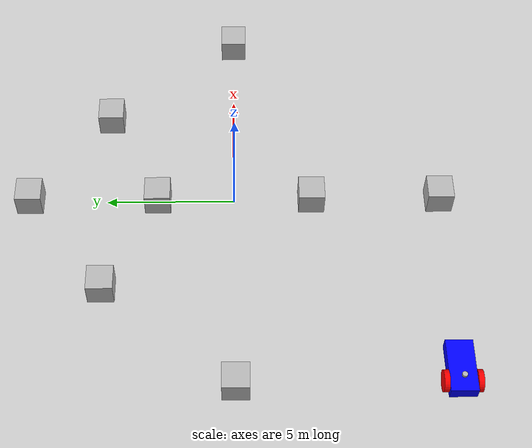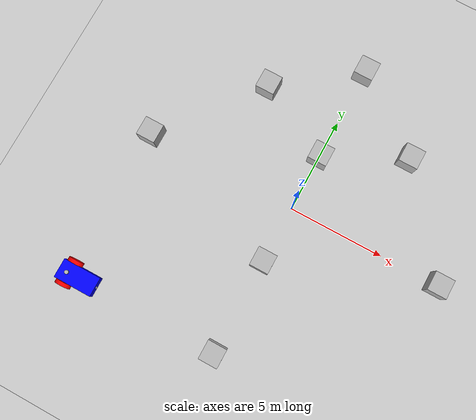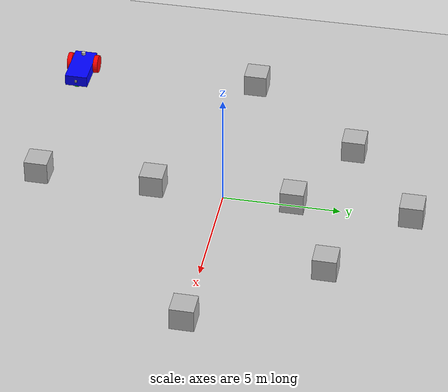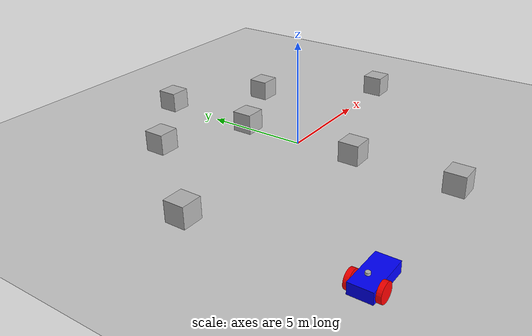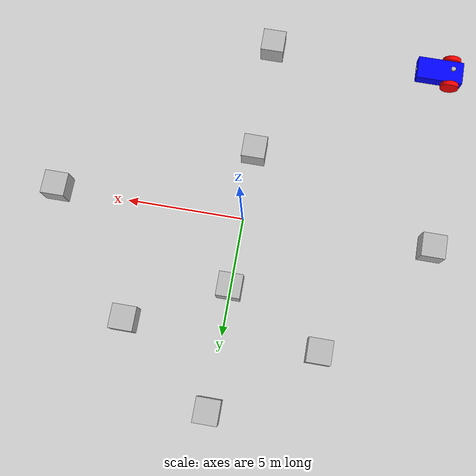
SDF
<sdf version="1.8">
 <world name="aruco_world">
  <physics name="1ms" type="ignored">
   <max_step_size>0.001</max_step_size>
   <real_time_factor>1.0</real_time_factor>
  </physics>
  <plugin filename="gz-sim-physics-system" name="gz::sim::systems::Physics"/>
  <plugin filename="gz-sim-user-commands-system" name="gz::sim::systems::UserCommands"/>
  <plugin filename="gz-sim-scene-broadcaster-system" name="gz::sim::systems::SceneBroadcaster"/>
  <plugin filename="gz-sim-sensors-system" name="gz::sim::systems::Sensors">
   <render_engine>ogre2</render_engine>
  </plugin>
  <plugin filename="gz-sim-imu-system" name="gz::sim::systems::Imu"/>
  <light type="directional" name="sun">
   <cast_shadows>false</cast_shadows>
   <pose>-10 0 10 0 0 0</pose>
   <diffuse>0.8 0.8 0.8 1</diffuse>
   <specular>0.2 0.2 0.2 1</specular>
   <attenuation>
    <range>1000</range>
    <constant>0.9</constant>
    <linear>0.01</linear>
    <quadratic>0.001</quadratic>
   </attenuation>
   <direction>-0.5 0.1 -0.9</direction>
  </light>
  <model name="ground_plane">
   <static>true</static>
   <link name="link">
    <collision name="collision"><geometry><plane><normal>0 0 1</normal></plane></geometry></collision>
    <visual name="visual">
     <geometry><plane><normal>0 0 1</normal><size>100 100</size></plane></geometry>
     <material>
      <ambient>0.8 0.8 0.8 1</ambient>
      <diffuse>0.8 0.8 0.8 1</diffuse>
      <specular>0.8 0.8 0.8 1</specular>
     </material>
    </visual>
   </link>
  </model>
  <include><uri>model://aruco_box_0</uri><pose>0 3 0.5 0 0 0</pose></include>
  <include><uri>model://aruco_box_1</uri><pose>0 -3 0.5 0 0 0</pose></include>
  <include><uri>model://aruco_box_2</uri><pose>0 -8 0.5 0 0 0</pose></include>
  <include><uri>model://aruco_box_3</uri><pose>0 8 0.5 0 0 0</pose></include>
  <include><uri>model://aruco_box_4</uri><pose>-8 0 0.5 0 0 0</pose></include>
  <include><uri>model://aruco_box_5</uri><pose>-4 5 0.5 0 0 0</pose></include>
  <include><uri>model://aruco_box_6</uri><pose>4 5 0.5 0 0 0</pose></include>
  <include><uri>model://aruco_box_7</uri><pose>8 0 0.5 0 0 0</pose></include>
  <include><uri>model://robot</uri><pose>-8 -8 0 0 0 0</pose></include>
 </world>
</sdf>

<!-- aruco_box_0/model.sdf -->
<sdf version="1.5">

 <model name="aruco_box_0">
      <pose>0 0 0 0 -0 0</pose>
      <link name="link">
        <inertial>
          <mass>1</mass>
          <inertia>
            <ixx>0.166667</ixx>
            <ixy>0</ixy>
            <ixz>0</ixz>
            <iyy>0.166667</iyy>
            <iyz>0</iyz>
            <izz>0.166667</izz>
          </inertia>
          <pose>0 0 0 0 -0 0</pose>
        </inertial>
        <collision name="collision">
          <geometry>
            <box>
              <size>1.0 1.0 1.0</size>
            </box>
          </geometry>
          <surface>
            <contact>
              <ode />
            </contact>
            <bounce />
            <friction>
              <torsional>
                <ode />
              </torsional>
              <ode />
            </friction>
          </surface>
          <max_contacts>10</max_contacts>
        </collision>
        <visual name="aruco_box_0_mesh">
          <geometry>
            <mesh>
                <uri>model://aruco_box_0/model.dae</uri>
                <scale>0.5 0.5 0.5</scale>
            </mesh>
          </geometry>
        </visual>
        <self_collide>0</self_collide>
        <enable_wind>0</enable_wind>
        <kinematic>0</kinematic>
      </link>
    </model>
    </sdf>

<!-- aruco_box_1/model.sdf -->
<sdf version="1.5">

 <model name="aruco_box_1">
      <pose>0 0 0 0 -0 0</pose>
      <link name="link">
        <inertial>
          <mass>1</mass>
          <inertia>
            <ixx>0.166667</ixx>
            <ixy>0</ixy>
            <ixz>0</ixz>
            <iyy>0.166667</iyy>
            <iyz>0</iyz>
            <izz>0.166667</izz>
          </inertia>
          <pose>0 0 0 0 -0 0</pose>
        </inertial>
        <collision name="collision">
          <geometry>
            <box>
              <size>1 1 1</size>
            </box>
          </geometry>
          <surface>
            <contact>
              <ode />
            </contact>
            <bounce />
            <friction>
              <torsional>
                <ode />
              </torsional>
              <ode />
            </friction>
          </surface>
          <max_contacts>10</max_contacts>
        </collision>
        <visual name="aruco_box_1_mesh">
          <geometry>
            <mesh>
                <uri>model://aruco_box_1/model.dae</uri>
                <scale>0.5 0.5 0.5</scale>
            </mesh>
          </geometry>
        </visual>
        <self_collide>0</self_collide>
        <enable_wind>0</enable_wind>
        <kinematic>0</kinematic>
      </link>
    </model>
    </sdf>

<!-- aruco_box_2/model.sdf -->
<sdf version="1.5">

 <model name="aruco_box_2">
      <pose>0 0 0 0 -0 0</pose>
      <link name="link">
        <inertial>
          <mass>1</mass>
          <inertia>
            <ixx>0.166667</ixx>
            <ixy>0</ixy>
            <ixz>0</ixz>
            <iyy>0.166667</iyy>
            <iyz>0</iyz>
            <izz>0.166667</izz>
          </inertia>
          <pose>0 0 0 0 -0 0</pose>
        </inertial>
        <collision name="collision">
          <geometry>
            <box>
              <size>1 1 1</size>
            </box>
          </geometry>
          <surface>
            <contact>
              <ode />
            </contact>
            <bounce />
            <friction>
              <torsional>
                <ode />
              </torsional>
              <ode />
            </friction>
          </surface>
          <max_contacts>10</max_contacts>
        </collision>
        <visual name="aruco_box_2_mesh">
          <geometry>
            <mesh>
                <uri>model://aruco_box_2/model.dae</uri>
                <scale>0.5 0.5 0.5</scale>
            </mesh>
          </geometry>
        </visual>
        <self_collide>0</self_collide>
        <enable_wind>0</enable_wind>
        <kinematic>0</kinematic>
      </link>
    </model>
    </sdf>

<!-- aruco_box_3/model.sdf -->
<sdf version="1.5">

 <model name="aruco_box_3">
      <pose>0 0 0 0 -0 0</pose>
      <link name="link">
        <inertial>
          <mass>1</mass>
          <inertia>
            <ixx>0.166667</ixx>
            <ixy>0</ixy>
            <ixz>0</ixz>
            <iyy>0.166667</iyy>
            <iyz>0</iyz>
            <izz>0.166667</izz>
          </inertia>
          <pose>0 0 0 0 -0 0</pose>
        </inertial>
        <collision name="collision">
          <geometry>
            <box>
              <size>1 1 1</size>
            </box>
          </geometry>
          <surface>
            <contact>
              <ode />
            </contact>
            <bounce />
            <friction>
              <torsional>
                <ode />
              </torsional>
              <ode />
            </friction>
          </surface>
          <max_contacts>10</max_contacts>
        </collision>
        <visual name="aruco_box_3_mesh">
          <geometry>
            <mesh>
                <uri>model://aruco_box_3/model.dae</uri>
                <scale>0.5 0.5 0.5</scale>
            </mesh>
          </geometry>
        </visual>
        <self_collide>0</self_collide>
        <enable_wind>0</enable_wind>
        <kinematic>0</kinematic>
      </link>
    </model>
    </sdf>

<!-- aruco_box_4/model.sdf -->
<sdf version="1.5">

 <model name="aruco_box_4">
      <pose>0 0 0 0 -0 0</pose>
      <link name="link">
        <inertial>
          <mass>1</mass>
          <inertia>
            <ixx>0.166667</ixx>
            <ixy>0</ixy>
            <ixz>0</ixz>
            <iyy>0.166667</iyy>
            <iyz>0</iyz>
            <izz>0.166667</izz>
          </inertia>
          <pose>0 0 0 0 -0 0</pose>
        </inertial>
        <collision name="collision">
          <geometry>
            <box>
              <size>1 1 1</size>
            </box>
          </geometry>
          <surface>
            <contact>
              <ode />
            </contact>
            <bounce />
            <friction>
              <torsional>
                <ode />
              </torsional>
              <ode />
            </friction>
          </surface>
          <max_contacts>10</max_contacts>
        </collision>
        <visual name="aruco_box_4_mesh">
          <geometry>
            <mesh>
                <uri>model://aruco_box_4/model.dae</uri>
                <scale>0.5 0.5 0.5</scale>
            </mesh>
          </geometry>
        </visual>
        <self_collide>0</self_collide>
        <enable_wind>0</enable_wind>
        <kinematic>0</kinematic>
      </link>
    </model>
    </sdf>

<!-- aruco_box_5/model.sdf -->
<sdf version="1.5">

 <model name="aruco_box_5">
      <pose>0 0 0 0 -0 0</pose>
      <link name="link">
        <inertial>
          <mass>1</mass>
          <inertia>
            <ixx>0.166667</ixx>
            <ixy>0</ixy>
            <ixz>0</ixz>
            <iyy>0.166667</iyy>
            <iyz>0</iyz>
            <izz>0.166667</izz>
          </inertia>
          <pose>0 0 0 0 -0 0</pose>
        </inertial>
        <collision name="collision">
          <geometry>
            <box>
              <size>1 1 1</size>
            </box>
          </geometry>
          <surface>
            <contact>
              <ode />
            </contact>
            <bounce />
            <friction>
              <torsional>
                <ode />
              </torsional>
              <ode />
            </friction>
          </surface>
          <max_contacts>10</max_contacts>
        </collision>
        <visual name="aruco_box_5_mesh">
          <geometry>
            <mesh>
                <uri>model://aruco_box_5/model.dae</uri>
                <scale>0.5 0.5 0.5</scale>
            </mesh>
          </geometry>
        </visual>
        <self_collide>0</self_collide>
        <enable_wind>0</enable_wind>
        <kinematic>0</kinematic>
      </link>
    </model>
    </sdf>

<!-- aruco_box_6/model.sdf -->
<sdf version="1.5">

 <model name="aruco_box_6">
      <pose>0 0 0 0 -0 0</pose>
      <link name="link">
        <inertial>
          <mass>1</mass>
          <inertia>
            <ixx>0.166667</ixx>
            <ixy>0</ixy>
            <ixz>0</ixz>
            <iyy>0.166667</iyy>
            <iyz>0</iyz>
            <izz>0.166667</izz>
          </inertia>
          <pose>0 0 0 0 -0 0</pose>
        </inertial>
        <collision name="collision">
          <geometry>
            <box>
              <size>1 1 1</size>
            </box>
          </geometry>
          <surface>
            <contact>
              <ode />
            </contact>
            <bounce />
            <friction>
              <torsional>
                <ode />
              </torsional>
              <ode />
            </friction>
          </surface>
          <max_contacts>10</max_contacts>
        </collision>
        <visual name="aruco_box_6_mesh">
          <geometry>
            <mesh>
                <uri>model://aruco_box_6/model.dae</uri>
                <scale>0.5 0.5 0.5</scale>
            </mesh>
          </geometry>
        </visual>
        <self_collide>0</self_collide>
        <enable_wind>0</enable_wind>
        <kinematic>0</kinematic>
      </link>
    </model>
    </sdf>

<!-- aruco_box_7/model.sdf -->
<sdf version="1.5">

 <model name="aruco_box_7">
      <pose>0 0 0 0 -0 0</pose>
      <link name="link">
        <inertial>
          <mass>1</mass>
          <inertia>
            <ixx>0.166667</ixx>
            <ixy>0</ixy>
            <ixz>0</ixz>
            <iyy>0.166667</iyy>
            <iyz>0</iyz>
            <izz>0.166667</izz>
          </inertia>
          <pose>0 0 0 0 -0 0</pose>
        </inertial>
        <collision name="collision">
          <geometry>
            <box>
              <size>1 1 1</size>
            </box>
          </geometry>
          <surface>
            <contact>
              <ode />
            </contact>
            <bounce />
            <friction>
              <torsional>
                <ode />
              </torsional>
              <ode />
            </friction>
          </surface>
          <max_contacts>10</max_contacts>
        </collision>
        <visual name="aruco_box_7_mesh">
          <geometry>
            <mesh>
                <uri>model://aruco_box_7/model.dae</uri>
                <scale>0.5 0.5 0.5</scale>
            </mesh>
          </geometry>
        </visual>
        <self_collide>0</self_collide>
        <enable_wind>0</enable_wind>
        <kinematic>0</kinematic>
      </link>
    </model>
    </sdf>

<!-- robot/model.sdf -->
<sdf version="1.8">
    <model name='vehicle_blue'>
        <canonical_link>chassis</canonical_link>
        <plugin
            filename="gz-sim-pose-publisher-system"
            name="gz::sim::systems::PosePublisher">
            <use_pose_vector_msg>true</use_pose_vector_msg>
            <publish_nested_model_pose>true</publish_nested_model_pose>
        </plugin>

        <link name='chassis'>
            <pose relative_to='__model__'>0.5 0 0.4 0 0 0</pose>
            <inertial> <!--inertial properties of the link mass, inertia matix-->
                <mass>10.14395</mass>
                <inertia>
                    <ixx>0.126164</ixx>
                    <ixy>0</ixy>
                    <ixz>0</ixz>
                    <iyy>0.416519</iyy>
                    <iyz>0</iyz>
                    <izz>0.481014</izz>
                </inertia>
            </inertial>
            <visual name='visual'>
                <geometry>
                    <box>
                        <size>2.0 1.0 0.5</size> <!--question: this size is in meter-->
                    </box>
                </geometry>
                <!--let's add color to our link-->
                <material>
                    <ambient>0.0 0.0 1.0 1</ambient>
                    <diffuse>0.0 0.0 1.0 1</diffuse>
                    <specular>0.0 0.0 1.0 1</specular>
                </material>
            </visual>
            <collision name='collision'> <!--todo: describe why we need the collision-->
                <geometry>
                    <box>
                        <size>2.0 1.0 0.5</size>
                    </box>
                </geometry>
            </collision>
        </link>

        <!-- Attach a camera to the nose of the bot -->
        <link name="camera">
            <pose relative_to="chassis">1.0 0 0 0 0 0</pose>
            <inertial>
              <mass>0.1</mass>
              <inertia>
                <ixx>0.000166667</ixx>
                <iyy>0.000166667</iyy>
                <izz>0.000166667</izz>
              </inertia>
            </inertial>
            <collision name="collision">
              <geometry>
                <box>
                  <size>0.1 0.1 0.1</size>
                </box>
              </geometry>
            </collision>
            <visual name="visual">
              <geometry>
                <box>
                  <size>0.1 0.1 0.1</size>
                </box>
              </geometry>
            </visual>
            <sensor name="camera" type="camera">
              <camera>
                <horizontal_fov>1.047</horizontal_fov>
                <image>
                  <width>1280</width>
                  <height>720</height>
                </image>
                <clip>
                  <near>0.1</near>
                  <far>100</far>
                </clip>
              </camera>
              <always_on>1</always_on>
              <update_rate>30</update_rate>
              <visualize>true</visualize>
              <topic>camera</topic>
              <cameraInfoTopicName>camera_info</cameraInfoTopicName>
            </sensor>
          </link>

        <joint name="camera_joint" type="fixed">
            <parent>chassis</parent>
            <child>camera</child>
        </joint>

        <!-- Lidar Sensor -->
        <link name="lidar">
            <pose relative_to="chassis">-0.5 0 0.5 0 0 0</pose>
            <collision name="collision">
                <geometry>
                    <cylinder>
                        <radius>0.1</radius>
                        <length>0.1</length>
                    </cylinder>
                </geometry>
            </collision>
            <visual name="visual">
                <geometry>
                    <cylinder>
                        <radius>0.1</radius>
                        <length>0.1</length>
                    </cylinder>
                </geometry>
            </visual>
            <sensor name='gpu_lidar' type='gpu_lidar'>"
                <pose relative_to='lidar_frame'>0 0 0 0 0 0</pose>
                <topic>lidar</topic>
                <update_rate>10</update_rate>
                <ray>
                    <scan>
                        <horizontal>
                            <samples>7200</samples>
                            <resolution>1</resolution>
                            <min_angle>0</min_angle>
                            <max_angle>6.2832</max_angle>
                        </horizontal>
                        <vertical>
                            <samples>1</samples>
                            <resolution>0.01</resolution>
                            <min_angle>0</min_angle>
                            <max_angle>0</max_angle>
                        </vertical>
                    </scan>
                    <range>
                        <min>0.08</min>
                        <max>10.0</max>
                        <resolution>0.01</resolution>
                    </range>
                    <noise>
                        <type>gaussian</type>
                        <mean>0.0</mean>
                        <stddev>0.01</stddev>
                    </noise>
                </ray>
                <always_on>1</always_on>
                <visualize>true</visualize>
            </sensor>
        </link>

        <joint name="lidar_joint" type="fixed">
            <parent>chassis</parent>
            <child>lidar</child>
        </joint>

        <link name="imu_link">
            <pose relative_to="chassis">-0.5 0 0 0 0 0</pose>
            <sensor name='imu_sensor' type='imu'>"
                <pose relative_to='imu_frame'>0 0 0 0 0 0</pose>
                  <update_rate>100</update_rate>
                  <topic>imu</topic>
                  <imu>
                    <angular_velocity>
                      <noise type="gaussian">
                        <mean>0.0</mean>
                        <stddev>0.01</stddev>
                      </noise>
                    </angular_velocity>
                    <linear_acceleration>
                      <noise type="gaussian">
                        <mean>0.0</mean>
                        <stddev>0.1</stddev>
                      </noise>
                    </linear_acceleration>
                  </imu>
              </sensor>
        </link>

        <joint name="imu_joint" type="fixed">
            <parent>chassis</parent>
            <child>imu_link</child>
        </joint>

        <!--let's build the left wheel-->
        <link name='left_wheel'>
            <pose relative_to="chassis">-0.5 0.6 0 -1.5707 0 0</pose> <!--angles are in radian-->
            <inertial>
                <mass>2</mass>
                <inertia>
                    <ixx>0.145833</ixx>
                    <ixy>0</ixy>
                    <ixz>0</ixz>
                    <iyy>0.145833</iyy>
                    <iyz>0</iyz>
                    <izz>0.125</izz>
                </inertia>
            </inertial>
            <visual name='visual'>
                <geometry>
                    <cylinder>
                        <radius>0.4</radius>
                        <length>0.2</length>
                    </cylinder>
                </geometry>
                <material>
                    <ambient>1.0 0.0 0.0 1</ambient>
                    <diffuse>1.0 0.0 0.0 1</diffuse>
                    <specular>1.0 0.0 0.0 1</specular>
                </material>
            </visual>
            <collision name='collision'>
                <geometry>
                    <cylinder>
                        <radius>0.4</radius>
                        <length>0.2</length>
                    </cylinder>
                </geometry>
                  <surface>
                <friction>
                  <ode>
                    <mu>0.9</mu> <!-- Static friction -->
                    <mu2>0.7</mu2> <!-- Kinetic friction -->
                  </ode>
                </friction>
              </surface>
            </collision>
        </link>

        <!--copy and paste for right wheel but change position-->
        <link name='right_wheel'>
            <pose relative_to="chassis">-0.5 -0.6 0 -1.5707 0 0</pose> <!--angles are in radian-->
            <inertial>
                <mass>1</mass>
                <inertia>
                    <ixx>0.145833</ixx>
                    <ixy>0</ixy>
                    <ixz>0</ixz>
                    <iyy>0.145833</iyy>
                    <iyz>0</iyz>
                    <izz>0.125</izz>
                </inertia>
            </inertial>
            <visual name='visual'>
                <geometry>
                    <cylinder>
                        <radius>0.4</radius>
                        <length>0.2</length>
                    </cylinder>
                </geometry>
                <material>
                    <ambient>1.0 0.0 0.0 1</ambient>
                    <diffuse>1.0 0.0 0.0 1</diffuse>
                    <specular>1.0 0.0 0.0 1</specular>
                </material>
            </visual>
            <collision name='collision'>
                <geometry>
                    <cylinder>
                        <radius>0.4</radius>
                        <length>0.2</length>
                    </cylinder>
                </geometry>
                  <surface>
                <friction>
                  <ode>
                    <mu>0.9</mu> <!-- Static friction -->
                    <mu2>0.7</mu2> <!-- Kinetic friction -->
                  </ode>
                </friction>
              </surface>
            </collision>
        </link>

        <frame name="caster_frame" attached_to='chassis'>
            <pose>0.8 0 -0.2 0 0 0</pose>
        </frame>

        <!--caster wheel-->
        <link name='caster'>
            <pose relative_to='caster_frame'/>
            <inertial>
                <mass>1</mass>
                <inertia>
                    <ixx>0.1</ixx>
                    <ixy>0</ixy>
                    <ixz>0</ixz>
                    <iyy>0.1</iyy>
                    <iyz>0</iyz>
                    <izz>0.1</izz>
                </inertia>
            </inertial>
            <visual name='visual'>
                <geometry>
                    <sphere>
                        <radius>0.2</radius>
                    </sphere>
                </geometry>
                <material>
                    <ambient>0.0 1 0.0 1</ambient>
                    <diffuse>0.0 1 0.0 1</diffuse>
                    <specular>0.0 1 0.0 1</specular>
                </material>
            </visual>
            <collision name='collision'>
                <geometry>
                    <sphere>
                        <radius>0.2</radius>
                    </sphere>
                </geometry>
            </collision>
        </link>

        <!--connecting these links together using joints-->
        <joint name='left_wheel_joint' type='revolute'> <!--continous joint is not supported yet-->
            <pose relative_to='left_wheel'/>
            <parent>chassis</parent>
            <child>left_wheel</child>
            <axis>
                <xyz expressed_in='__model__'>0 1 0</xyz> <!--can be defined as any frame or even arbitrary frames-->
                <limit>
                    <lower>-1.79769e+308</lower>    <!--negative infinity-->
                    <upper>1.79769e+308</upper>     <!--positive infinity-->
                </limit>
            </axis>
        </joint>

        <joint name='right_wheel_joint' type='revolute'>
            <pose relative_to='right_wheel'/>
            <parent>chassis</parent>
            <child>right_wheel</child>
            <axis>
                <xyz expressed_in='__model__'>0 1 0</xyz>
                <limit>
                    <lower>-1.79769e+308</lower>    <!--negative infinity-->
                    <upper>1.79769e+308</upper>     <!--positive infinity-->
                </limit>
            </axis>
        </joint>

        <!--different type of joints ball joint--> <!--defult value is the child-->
        <joint name='caster_wheel' type='ball'>
            <parent>chassis</parent>
            <child>caster</child>
        </joint>

        <!--diff drive plugin-->
        <plugin
            filename="gz-sim-diff-drive-system"
            name="gz::sim::systems::DiffDrive">
            <left_joint>left_wheel_joint</left_joint>
            <right_joint>right_wheel_joint</right_joint>
            <wheel_separation>1.2</wheel_separation>
            <wheel_radius>0.4</wheel_radius>
            <odom_publish_frequency>100</odom_publish_frequency>
            <topic>cmd_vel</topic>
        </plugin>

    </model>
</sdf>
